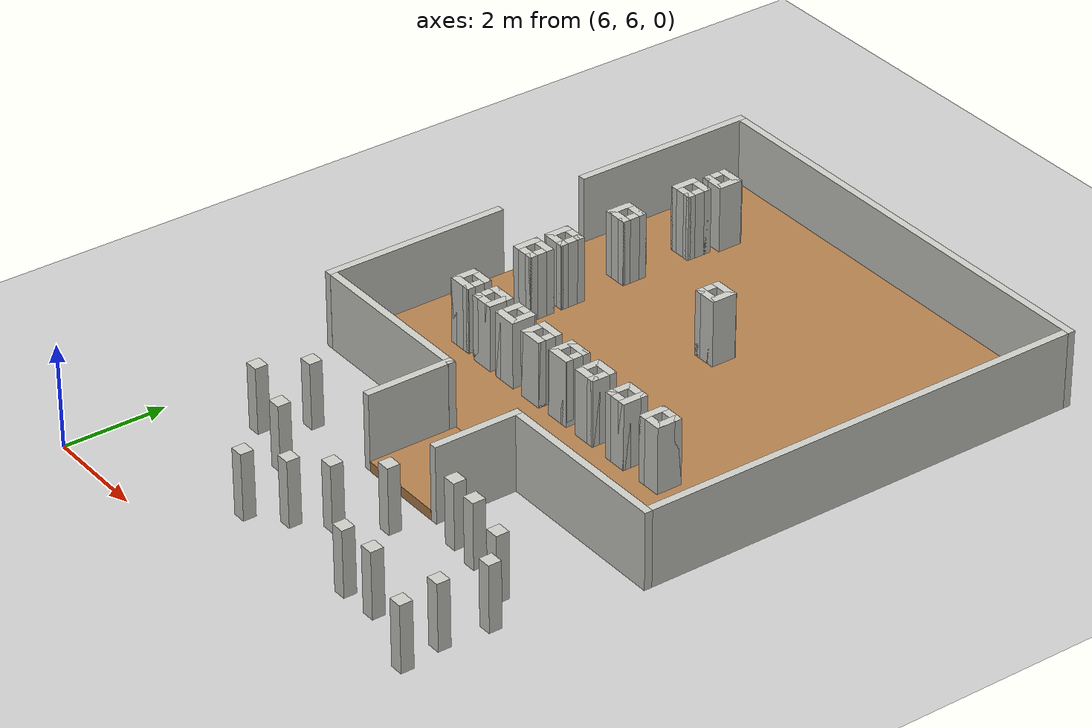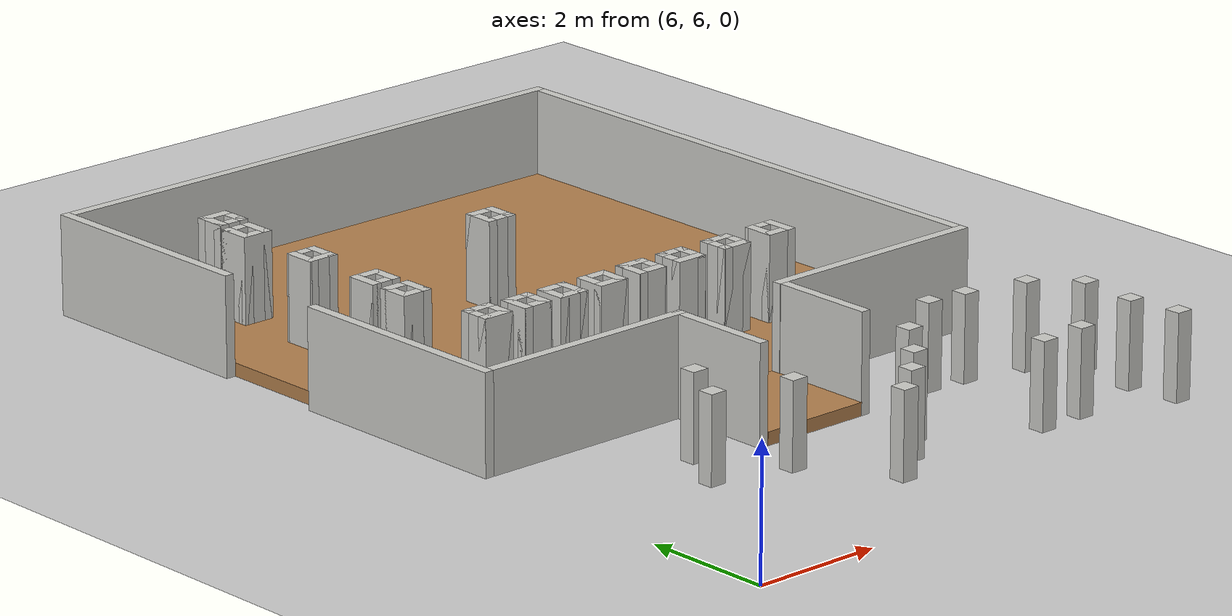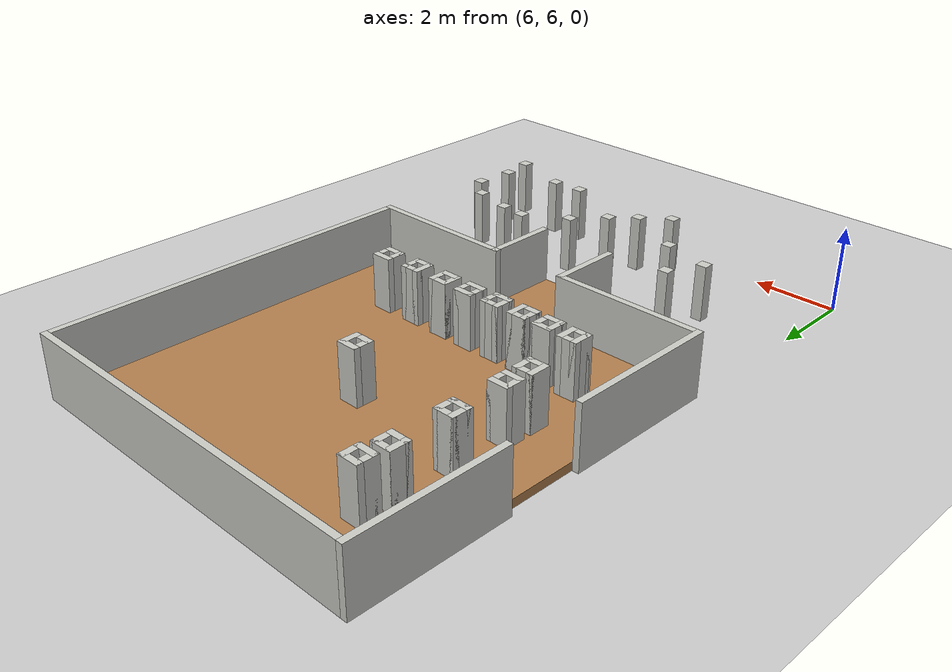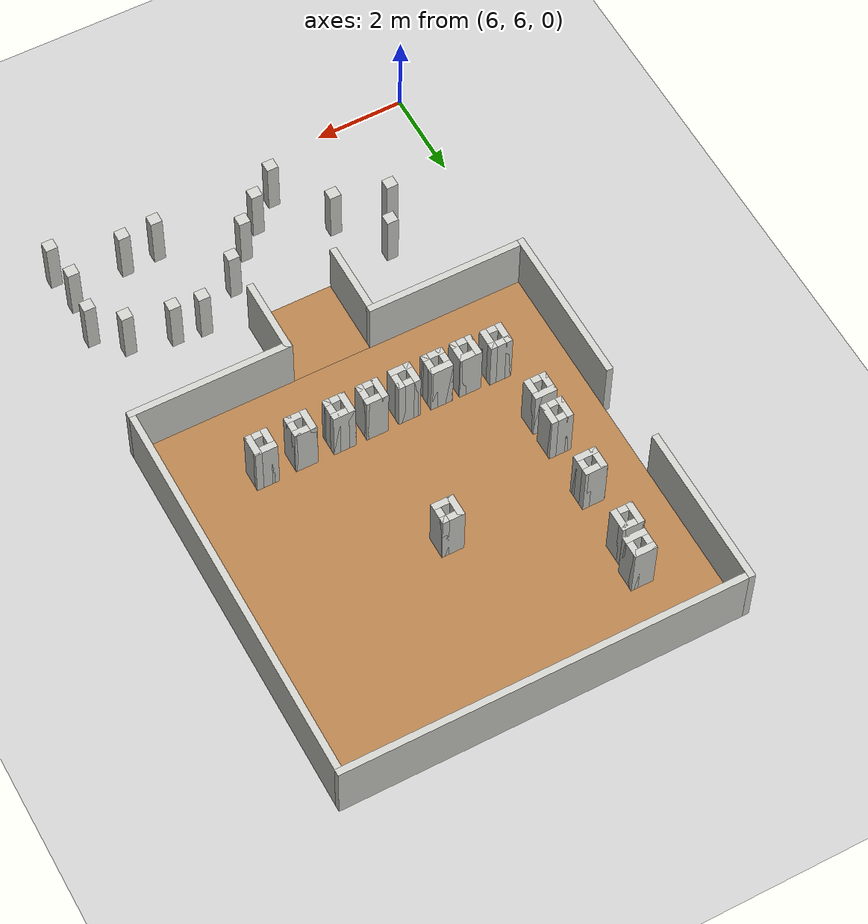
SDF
<sdf version="1.6">
 <world name="default">
  <model name="ground_plane">
   <static>1</static>
   <link name="link">
    <collision name="collision">
     <geometry><plane><normal>0 0 1</normal><size>100 100</size></plane></geometry>
     <surface><friction><ode><mu>100</mu><mu2>50</mu2></ode></friction></surface>
    </collision>
    <visual name="visual">
     <cast_shadows>0</cast_shadows>
     <geometry><plane><normal>0 0 1</normal><size>100 100</size></plane></geometry>
     <material>
      <script><uri>file://media/materials/scripts/gazebo.material</uri><name>Gazebo/Grey</name></script>
     </material>
    </visual>
   </link>
  </model>
  <model name="nerve_room_5x5ARENA_right_clone_clone">
   <pose>10.5243 15.8402 0 0 -0 0</pose>
   <link name="Wall_11">
    <collision name="Wall_11_Collision">
     <geometry><box><size>8.75 0.15 1.5</size></box></geometry>
     <pose>0 0 0.75 0 -0 0</pose>
    </collision>
    <visual name="Wall_11_Visual">
     <pose>0 0 0.75 0 -0 0</pose>
     <geometry><box><size>8.75 0.15 1.5</size></box></geometry>
     <material>
      <script><uri>file://media/materials/scripts/gazebo.material</uri><name>Gazebo/CeilingTiled</name></script>
      <ambient>1 0.764706 0.305882 1</ambient>
     </material>
    </visual>
    <pose>4.44912 -0.000431 0 0 0 -1.5708</pose>
   </link>
   <link name="Wall_13">
    <collision name="Wall_13_Collision">
     <geometry><box><size>3.65 0.15 1.5</size></box></geometry>
     <pose>0 0 0.75 0 -0 0</pose>
    </collision>
    <visual name="Wall_13_Visual">
     <pose>0 0 0.75 0 -0 0</pose>
     <geometry><box><size>3.65 0.15 1.5</size></box></geometry>
     <material>
      <script><uri>file://media/materials/scripts/gazebo.material</uri><name>Gazebo/CeilingTiled</name></script>
      <ambient>1 0.764706 0.305882 1</ambient>
     </material>
    </visual>
    <pose>-4.44961 2.70076 0 0 0 -1.5708</pose>
   </link>
   <link name="Wall_15">
    <collision name="Wall_15_Collision">
     <geometry><box><size>3.65 0.15 1.5</size></box></geometry>
     <pose>0 0 0.75 0 -0 0</pose>
    </collision>
    <visual name="Wall_15_Visual">
     <pose>0 0 0.75 0 -0 0</pose>
     <geometry><box><size>3.65 0.15 1.5</size></box></geometry>
     <material>
      <script><uri>file://media/materials/scripts/gazebo.material</uri><name>Gazebo/CeilingTiled</name></script>
      <ambient>1 0.764706 0.305882 1</ambient>
     </material>
    </visual>
    <pose>2.69961 -4.45076 0 0 -0 0</pose>
   </link>
   <link name="Wall_17">
    <collision name="Wall_17_Collision">
     <geometry><box><size>8.90028 0.15 1.5</size></box></geometry>
     <pose>0 0 0.75 0 -0 0</pose>
    </collision>
    <visual name="Wall_17_Visual">
     <pose>0 0 0.75 0 -0 0</pose>
     <geometry><box><size>8.90028 0.15 1.5</size></box></geometry>
     <material>
      <script><uri>file://media/materials/scripts/gazebo.material</uri><name>Gazebo/CeilingTiled</name></script>
      <ambient>1 0.764706 0.305882 1</ambient>
     </material>
    </visual>
    <pose>0.074346 4.45022 0 0 0 -6.5e-05</pose>
   </link>
   <link name="Wall_21">
    <collision name="Wall_21_Collision">
     <geometry><box><size>3.5 0.15 1.5</size></box></geometry>
     <pose>0 0 0.75 0 -0 0</pose>
    </collision>
    <visual name="Wall_21_Visual">
     <pose>0 0 0.75 0 -0 0</pose>
     <geometry><box><size>3.5 0.15 1.5</size></box></geometry>
     <material>
      <script><uri>file://media/materials/scripts/gazebo.material</uri><name>Gazebo/CeilingTiled</name></script>
      <ambient>1 0.764706 0.305882 1</ambient>
     </material>
    </visual>
    <pose>-2.62383 -4.4498 0 0 -0 0</pose>
   </link>
   <link name="Wall_25">
    <collision name="Wall_25_Collision">
     <geometry><box><size>3.65 0.15 1.5</size></box></geometry>
     <pose>0 0 0.75 0 -0 0</pose>
    </collision>
    <visual name="Wall_25_Visual">
     <pose>0 0 0.75 0 -0 0</pose>
     <geometry><box><size>3.65 0.15 1.5</size></box></geometry>
     <material>
      <script><uri>file://media/materials/scripts/gazebo.material</uri><name>Gazebo/CeilingTiled</name></script>
      <ambient>1 0.764706 0.305882 1</ambient>
     </material>
    </visual>
    <pose>-4.44941 -2.70044 0 0 0 -1.5708</pose>
   </link>
   <link name="Wall_6">
    <collision name="Wall_6_Collision">
     <geometry><box><size>8.76 8.75 0.2</size></box></geometry>
     <pose>0 0 0.1 0 -0 0</pose>
    </collision>
    <visual name="Wall_6_Visual">
     <pose>0 0 0.1 0 -0 0</pose>
     <geometry><box><size>8.76 8.75 0.2</size></box></geometry>
     <material>
      <script><uri>file://media/materials/scripts/gazebo.material</uri><name>Gazebo/Wood</name></script>
      <ambient>1 0.764706 0.305882 1</ambient>
     </material>
    </visual>
    <pose>0.000485 -0.004173 0 0 -0 1.5708</pose>
   </link>
   <static>1</static>
  </model>
  <model name="nerve_straight_clone_clone_1">
   <pose>10.5284 10.5852 0 0 -0 0</pose>
   <link name="Wall_0">
    <collision name="Wall_0_Collision">
     <geometry><box><size>1.76 1.75 0.2</size></box></geometry>
     <pose>0 0 0.1 0 -0 0</pose>
    </collision>
    <visual name="Wall_0_Visual">
     <pose>0 0 0.1 0 -0 0</pose>
     <geometry><box><size>1.76 1.75 0.2</size></box></geometry>
     <material>
      <script><uri>file://media/materials/scripts/gazebo.material</uri><name>Gazebo/Wood</name></script>
      <ambient>1 0.764706 0.305882 1</ambient>
     </material>
    </visual>
    <pose>0.005 -0.002 0 0 -0 3.14159</pose>
   </link>
   <link name="Wall_2">
    <collision name="Wall_2_Collision">
     <geometry><box><size>1.75 0.15 1.5</size></box></geometry>
     <pose>0 0 0.75 0 -0 0</pose>
    </collision>
    <visual name="Wall_2_Visual">
     <pose>0 0 0.75 0 -0 0</pose>
     <geometry><box><size>1.75 0.15 1.5</size></box></geometry>
     <material>
      <script><uri>file://media/materials/scripts/gazebo.material</uri><name>Gazebo/CeilingTiled</name></script>
      <ambient>1 0.764706 0.305882 1</ambient>
     </material>
    </visual>
    <pose>-0.955 0.002 0 0 0 -1.5708</pose>
   </link>
   <link name="Wall_4">
    <collision name="Wall_4_Collision">
     <geometry><box><size>1.75 0.15 1.5</size></box></geometry>
     <pose>0 0 0.75 0 -0 0</pose>
    </collision>
    <visual name="Wall_4_Visual">
     <pose>0 0 0.75 0 -0 0</pose>
     <geometry><box><size>1.75 0.15 1.5</size></box></geometry>
     <material>
      <script><uri>file://media/materials/scripts/gazebo.material</uri><name>Gazebo/CeilingTiled</name></script>
      <ambient>1 0.764706 0.305882 1</ambient>
     </material>
    </visual>
    <pose>0.955 0.002 0 0 0 -1.5708</pose>
   </link>
   <static>1</static>
  </model>
  <model name="nerve_obs_squarepillar_small">
   <pose>7.74911 8.7808 0.2 0 -0 0</pose>
   <link name="Wall_40">
    <collision name="Wall_40_Collision">
     <geometry><box><size>0.26 0.25 1.3</size></box></geometry>
     <pose>0 0 0.65 0 -0 0</pose>
    </collision>
    <visual name="Wall_40_Visual">
     <pose>0 0 0.65 0 -0 0</pose>
     <geometry><box><size>0.26 0.25 1.3</size></box></geometry>
     <material>
      <script><uri>file://media/materials/scripts/gazebo.material</uri><name>Gazebo/CeilingTiled</name></script>
      <ambient>1 0.764706 0.305882 1</ambient>
     </material>
    </visual>
   </link>
   <static>1</static>
  </model>
  <model name="nerve_obs_squarepillar_small_clone">
   <pose>11.4732 8.87117 0.2 0 -0 0</pose>
   <link name="Wall_40">
    <collision name="Wall_40_Collision">
     <geometry><box><size>0.26 0.25 1.3</size></box></geometry>
     <pose>0 0 0.65 0 -0 0</pose>
    </collision>
    <visual name="Wall_40_Visual">
     <pose>0 0 0.65 0 -0 0</pose>
     <geometry><box><size>0.26 0.25 1.3</size></box></geometry>
     <material>
      <script><uri>file://media/materials/scripts/gazebo.material</uri><name>Gazebo/CeilingTiled</name></script>
      <ambient>1 0.764706 0.305882 1</ambient>
     </material>
    </visual>
   </link>
   <static>1</static>
  </model>
  <model name="nerve_obs_squarepillar_small_clone_0">
   <pose>10.8766 8.17408 0.2 0 -0 0</pose>
   <link name="Wall_40">
    <collision name="Wall_40_Collision">
     <geometry><box><size>0.26 0.25 1.3</size></box></geometry>
     <pose>0 0 0.65 0 -0 0</pose>
    </collision>
    <visual name="Wall_40_Visual">
     <pose>0 0 0.65 0 -0 0</pose>
     <geometry><box><size>0.26 0.25 1.3</size></box></geometry>
     <material>
      <script><uri>file://media/materials/scripts/gazebo.material</uri><name>Gazebo/CeilingTiled</name></script>
      <ambient>1 0.764706 0.305882 1</ambient>
     </material>
    </visual>
   </link>
   <static>1</static>
  </model>
  <model name="nerve_obs_squarepillar_small_clone_1">
   <pose>9.73757 7.19935 0.2 0 -0 0</pose>
   <link name="Wall_40">
    <collision name="Wall_40_Collision">
     <geometry><box><size>0.26 0.25 1.3</size></box></geometry>
     <pose>0 0 0.65 0 -0 0</pose>
    </collision>
    <visual name="Wall_40_Visual">
     <pose>0 0 0.65 0 -0 0</pose>
     <geometry><box><size>0.26 0.25 1.3</size></box></geometry>
     <material>
      <script><uri>file://media/materials/scripts/gazebo.material</uri><name>Gazebo/CeilingTiled</name></script>
      <ambient>1 0.764706 0.305882 1</ambient>
     </material>
    </visual>
   </link>
   <static>1</static>
  </model>
  <model name="nerve_obs_squarepillar_small_clone_8">
   <pose>13.2321 7.34378 0.2 0 -0 0</pose>
   <link name="Wall_40">
    <collision name="Wall_40_Collision">
     <geometry><box><size>0.26 0.25 1.3</size></box></geometry>
     <pose>0 0 0.65 0 -0 0</pose>
    </collision>
    <visual name="Wall_40_Visual">
     <pose>0 0 0.65 0 -0 0</pose>
     <geometry><box><size>0.26 0.25 1.3</size></box></geometry>
     <material>
      <script><uri>file://media/materials/scripts/gazebo.material</uri><name>Gazebo/CeilingTiled</name></script>
      <ambient>1 0.764706 0.305882 1</ambient>
     </material>
    </visual>
   </link>
   <static>1</static>
  </model>
  <model name="nerve_obs_squarepillar_small_clone_22">
   <pose>14.0423 9.17522 0.2 0 -0 0</pose>
   <link name="Wall_40">
    <collision name="Wall_40_Collision">
     <geometry><box><size>0.26 0.25 1.3</size></box></geometry>
     <pose>0 0 0.65 0 -0 0</pose>
    </collision>
    <visual name="Wall_40_Visual">
     <pose>0 0 0.65 0 -0 0</pose>
     <geometry><box><size>0.26 0.25 1.3</size></box></geometry>
     <material>
      <script><uri>file://media/materials/scripts/gazebo.material</uri><name>Gazebo/CeilingTiled</name></script>
      <ambient>1 0.764706 0.305882 1</ambient>
     </material>
    </visual>
   </link>
   <static>1</static>
  </model>
  <model name="nerve_obs_squarepillar_small_clone_23">
   <pose>13.0819 9.4058 0.2 0 -0 0</pose>
   <link name="Wall_40">
    <collision name="Wall_40_Collision">
     <geometry><box><size>0.26 0.25 1.3</size></box></geometry>
     <pose>0 0 0.65 0 -0 0</pose>
    </collision>
    <visual name="Wall_40_Visual">
     <pose>0 0 0.65 0 -0 0</pose>
     <geometry><box><size>0.26 0.25 1.3</size></box></geometry>
     <material>
      <script><uri>file://media/materials/scripts/gazebo.material</uri><name>Gazebo/CeilingTiled</name></script>
      <ambient>1 0.764706 0.305882 1</ambient>
     </material>
    </visual>
   </link>
   <static>1</static>
  </model>
  <model name="nerve_obs_squarepillar_small_clone_24">
   <pose>12.4529 9.47783 0.2 0 -0 0</pose>
   <link name="Wall_40">
    <collision name="Wall_40_Collision">
     <geometry><box><size>0.26 0.25 1.3</size></box></geometry>
     <pose>0 0 0.65 0 -0 0</pose>
    </collision>
    <visual name="Wall_40_Visual">
     <pose>0 0 0.65 0 -0 0</pose>
     <geometry><box><size>0.26 0.25 1.3</size></box></geometry>
     <material>
      <script><uri>file://media/materials/scripts/gazebo.material</uri><name>Gazebo/CeilingTiled</name></script>
      <ambient>1 0.764706 0.305882 1</ambient>
     </material>
    </visual>
   </link>
   <static>1</static>
  </model>
  <model name="nerve_obs_squarepillar_small_clone_25">
   <pose>14.617 8.614 0.2 0 -0 0</pose>
   <link name="Wall_40">
    <collision name="Wall_40_Collision">
     <geometry><box><size>0.26 0.25 1.3</size></box></geometry>
     <pose>0 0 0.65 0 -0 0</pose>
    </collision>
    <visual name="Wall_40_Visual">
     <pose>0 0 0.65 0 -0 0</pose>
     <geometry><box><size>0.26 0.25 1.3</size></box></geometry>
     <material>
      <script><uri>file://media/materials/scripts/gazebo.material</uri><name>Gazebo/CeilingTiled</name></script>
      <ambient>1 0.764706 0.305882 1</ambient>
     </material>
    </visual>
   </link>
   <static>1</static>
  </model>
  <model name="nerve_obs_squarepillar_small_clone_26">
   <pose>14.5434 7.68778 0.2 0 -0 0</pose>
   <link name="Wall_40">
    <collision name="Wall_40_Collision">
     <geometry><box><size>0.26 0.25 1.3</size></box></geometry>
     <pose>0 0 0.65 0 -0 0</pose>
    </collision>
    <visual name="Wall_40_Visual">
     <pose>0 0 0.65 0 -0 0</pose>
     <geometry><box><size>0.26 0.25 1.3</size></box></geometry>
     <material>
      <script><uri>file://media/materials/scripts/gazebo.material</uri><name>Gazebo/CeilingTiled</name></script>
      <ambient>1 0.764706 0.305882 1</ambient>
     </material>
    </visual>
   </link>
   <static>1</static>
  </model>
  <model name="nerve_obs_squarepillar_small_clone_27">
   <pose>14.6632 6.90108 0.2 0 -0 0</pose>
   <link name="Wall_40">
    <collision name="Wall_40_Collision">
     <geometry><box><size>0.26 0.25 1.3</size></box></geometry>
     <pose>0 0 0.65 0 -0 0</pose>
    </collision>
    <visual name="Wall_40_Visual">
     <pose>0 0 0.65 0 -0 0</pose>
     <geometry><box><size>0.26 0.25 1.3</size></box></geometry>
     <material>
      <script><uri>file://media/materials/scripts/gazebo.material</uri><name>Gazebo/CeilingTiled</name></script>
      <ambient>1 0.764706 0.305882 1</ambient>
     </material>
    </visual>
   </link>
   <static>1</static>
  </model>
  <model name="nerve_obs_squarepillar_small_clone_41">
   <pose>8.17192 9.57959 0.2 0 -0 0</pose>
   <link name="Wall_40">
    <collision name="Wall_40_Collision">
     <geometry><box><size>0.26 0.25 1.3</size></box></geometry>
     <pose>0 0 0.65 0 -0 0</pose>
    </collision>
    <visual name="Wall_40_Visual">
     <pose>0 0 0.65 0 -0 0</pose>
     <geometry><box><size>0.26 0.25 1.3</size></box></geometry>
     <material>
      <script><uri>file://media/materials/scripts/gazebo.material</uri><name>Gazebo/CeilingTiled</name></script>
      <ambient>1 0.764706 0.305882 1</ambient>
     </material>
    </visual>
   </link>
   <static>1</static>
  </model>
  <model name="nerve_obs_squarepillar_small_clone_55">
   <pose>8.91919 8.45815 0.2 0 -0 0</pose>
   <link name="Wall_40">
    <collision name="Wall_40_Collision">
     <geometry><box><size>0.26 0.25 1.3</size></box></geometry>
     <pose>0 0 0.65 0 -0 0</pose>
    </collision>
    <visual name="Wall_40_Visual">
     <pose>0 0 0.65 0 -0 0</pose>
     <geometry><box><size>0.26 0.25 1.3</size></box></geometry>
     <material>
      <script><uri>file://media/materials/scripts/gazebo.material</uri><name>Gazebo/CeilingTiled</name></script>
      <ambient>1 0.764706 0.305882 1</ambient>
     </material>
    </visual>
   </link>
   <static>1</static>
  </model>
  <model name="nerve_obs_squarepillar_small_clone_56">
   <pose>10.3495 7.68433 0.2 0 -0 0</pose>
   <link name="Wall_40">
    <collision name="Wall_40_Collision">
     <geometry><box><size>0.26 0.25 1.3</size></box></geometry>
     <pose>0 0 0.65 0 -0 0</pose>
    </collision>
    <visual name="Wall_40_Visual">
     <pose>0 0 0.65 0 -0 0</pose>
     <geometry><box><size>0.26 0.25 1.3</size></box></geometry>
     <material>
      <script><uri>file://media/materials/scripts/gazebo.material</uri><name>Gazebo/CeilingTiled</name></script>
      <ambient>1 0.764706 0.305882 1</ambient>
     </material>
    </visual>
   </link>
   <static>1</static>
  </model>
  <model name="nerve_obs_squarepillar_small_clone_57">
   <pose>12.4798 7.30993 0.2 0 -0 0</pose>
   <link name="Wall_40">
    <collision name="Wall_40_Collision">
     <geometry><box><size>0.26 0.25 1.3</size></box></geometry>
     <pose>0 0 0.65 0 -0 0</pose>
    </collision>
    <visual name="Wall_40_Visual">
     <pose>0 0 0.65 0 -0 0</pose>
     <geometry><box><size>0.26 0.25 1.3</size></box></geometry>
     <material>
      <script><uri>file://media/materials/scripts/gazebo.material</uri><name>Gazebo/CeilingTiled</name></script>
      <ambient>1 0.764706 0.305882 1</ambient>
     </material>
    </visual>
   </link>
   <static>1</static>
  </model>
  <model name="nerve_obs_squarepillar_large_clone_9_clone_0">
   <pose>10.514 13.1706 0.2 0 -0 0</pose>
   <link name="Wall_31">
    <collision name="Wall_31_Collision">
     <geometry><box><size>0.5 0.15 1.3</size></box></geometry>
     <pose>0 0 0.65 0 -0 0</pose>
    </collision>
    <visual name="Wall_31_Visual">
     <pose>0 0 0.65 0 -0 0</pose>
     <geometry><box><size>0.5 0.15 1.3</size></box></geometry>
     <material>
      <script><uri>file://media/materials/scripts/gazebo.material</uri><name>Gazebo/CeilingTiled</name></script>
      <ambient>1 0.764706 0.305882 1</ambient>
     </material>
    </visual>
    <pose>-0.175 0 0 0 0 -1.5708</pose>
   </link>
   <link name="Wall_32">
    <collision name="Wall_32_Collision">
     <geometry><box><size>0.5 0.15 1.3</size></box></geometry>
     <pose>0 0 0.65 0 -0 0</pose>
    </collision>
    <visual name="Wall_32_Visual">
     <pose>0 0 0.65 0 -0 0</pose>
     <geometry><box><size>0.5 0.15 1.3</size></box></geometry>
     <material>
      <script><uri>file://media/materials/scripts/gazebo.material</uri><name>Gazebo/CeilingTiled</name></script>
      <ambient>1 0.764706 0.305882 1</ambient>
     </material>
    </visual>
    <pose>0 -0.175 0 0 -0 0</pose>
   </link>
   <link name="Wall_33">
    <collision name="Wall_33_Collision">
     <geometry><box><size>0.5 0.15 1.3</size></box></geometry>
     <pose>0 0 0.65 0 -0 0</pose>
    </collision>
    <visual name="Wall_33_Visual">
     <pose>0 0 0.65 0 -0 0</pose>
     <geometry><box><size>0.5 0.15 1.3</size></box></geometry>
     <material>
      <script><uri>file://media/materials/scripts/gazebo.material</uri><name>Gazebo/CeilingTiled</name></script>
      <ambient>1 0.764706 0.305882 1</ambient>
     </material>
    </visual>
    <pose>0.175 0 0 0 -0 1.5708</pose>
   </link>
   <link name="Wall_34">
    <collision name="Wall_34_Collision">
     <geometry><box><size>0.5 0.15 1.3</size></box></geometry>
     <pose>0 0 0.65 0 -0 0</pose>
    </collision>
    <visual name="Wall_34_Visual">
     <pose>0 0 0.65 0 -0 0</pose>
     <geometry><box><size>0.5 0.15 1.3</size></box></geometry>
     <material>
      <script><uri>file://media/materials/scripts/gazebo.material</uri><name>Gazebo/CeilingTiled</name></script>
      <ambient>1 0.764706 0.305882 1</ambient>
     </material>
    </visual>
    <pose>0 0.175 0 0 -0 3.14159</pose>
   </link>
   <static>1</static>
  </model>
  <model name="nerve_obs_squarepillar_large_clone_9_clone_1">
   <pose>9.77118 13.1447 0.2 0 -0 0</pose>
   <link name="Wall_31">
    <collision name="Wall_31_Collision">
     <geometry><box><size>0.5 0.15 1.3</size></box></geometry>
     <pose>0 0 0.65 0 -0 0</pose>
    </collision>
    <visual name="Wall_31_Visual">
     <pose>0 0 0.65 0 -0 0</pose>
     <geometry><box><size>0.5 0.15 1.3</size></box></geometry>
     <material>
      <script><uri>file://media/materials/scripts/gazebo.material</uri><name>Gazebo/CeilingTiled</name></script>
      <ambient>1 0.764706 0.305882 1</ambient>
     </material>
    </visual>
    <pose>-0.175 0 0 0 0 -1.5708</pose>
   </link>
   <link name="Wall_32">
    <collision name="Wall_32_Collision">
     <geometry><box><size>0.5 0.15 1.3</size></box></geometry>
     <pose>0 0 0.65 0 -0 0</pose>
    </collision>
    <visual name="Wall_32_Visual">
     <pose>0 0 0.65 0 -0 0</pose>
     <geometry><box><size>0.5 0.15 1.3</size></box></geometry>
     <material>
      <script><uri>file://media/materials/scripts/gazebo.material</uri><name>Gazebo/CeilingTiled</name></script>
      <ambient>1 0.764706 0.305882 1</ambient>
     </material>
    </visual>
    <pose>0 -0.175 0 0 -0 0</pose>
   </link>
   <link name="Wall_33">
    <collision name="Wall_33_Collision">
     <geometry><box><size>0.5 0.15 1.3</size></box></geometry>
     <pose>0 0 0.65 0 -0 0</pose>
    </collision>
    <visual name="Wall_33_Visual">
     <pose>0 0 0.65 0 -0 0</pose>
     <geometry><box><size>0.5 0.15 1.3</size></box></geometry>
     <material>
      <script><uri>file://media/materials/scripts/gazebo.material</uri><name>Gazebo/CeilingTiled</name></script>
      <ambient>1 0.764706 0.305882 1</ambient>
     </material>
    </visual>
    <pose>0.175 0 0 0 -0 1.5708</pose>
   </link>
   <link name="Wall_34">
    <collision name="Wall_34_Collision">
     <geometry><box><size>0.5 0.15 1.3</size></box></geometry>
     <pose>0 0 0.65 0 -0 0</pose>
    </collision>
    <visual name="Wall_34_Visual">
     <pose>0 0 0.65 0 -0 0</pose>
     <geometry><box><size>0.5 0.15 1.3</size></box></geometry>
     <material>
      <script><uri>file://media/materials/scripts/gazebo.material</uri><name>Gazebo/CeilingTiled</name></script>
      <ambient>1 0.764706 0.305882 1</ambient>
     </material>
    </visual>
    <pose>0 0.175 0 0 -0 3.14159</pose>
   </link>
   <static>1</static>
  </model>
  <model name="nerve_obs_squarepillar_large_clone_9_clone_2">
   <pose>9.02848 13.1473 0.2 0 -0 0</pose>
   <link name="Wall_31">
    <collision name="Wall_31_Collision">
     <geometry><box><size>0.5 0.15 1.3</size></box></geometry>
     <pose>0 0 0.65 0 -0 0</pose>
    </collision>
    <visual name="Wall_31_Visual">
     <pose>0 0 0.65 0 -0 0</pose>
     <geometry><box><size>0.5 0.15 1.3</size></box></geometry>
     <material>
      <script><uri>file://media/materials/scripts/gazebo.material</uri><name>Gazebo/CeilingTiled</name></script>
      <ambient>1 0.764706 0.305882 1</ambient>
     </material>
    </visual>
    <pose>-0.175 0 0 0 0 -1.5708</pose>
   </link>
   <link name="Wall_32">
    <collision name="Wall_32_Collision">
     <geometry><box><size>0.5 0.15 1.3</size></box></geometry>
     <pose>0 0 0.65 0 -0 0</pose>
    </collision>
    <visual name="Wall_32_Visual">
     <pose>0 0 0.65 0 -0 0</pose>
     <geometry><box><size>0.5 0.15 1.3</size></box></geometry>
     <material>
      <script><uri>file://media/materials/scripts/gazebo.material</uri><name>Gazebo/CeilingTiled</name></script>
      <ambient>1 0.764706 0.305882 1</ambient>
     </material>
    </visual>
    <pose>0 -0.175 0 0 -0 0</pose>
   </link>
   <link name="Wall_33">
    <collision name="Wall_33_Collision">
     <geometry><box><size>0.5 0.15 1.3</size></box></geometry>
     <pose>0 0 0.65 0 -0 0</pose>
    </collision>
    <visual name="Wall_33_Visual">
     <pose>0 0 0.65 0 -0 0</pose>
     <geometry><box><size>0.5 0.15 1.3</size></box></geometry>
     <material>
      <script><uri>file://media/materials/scripts/gazebo.material</uri><name>Gazebo/CeilingTiled</name></script>
      <ambient>1 0.764706 0.305882 1</ambient>
     </material>
    </visual>
    <pose>0.175 0 0 0 -0 1.5708</pose>
   </link>
   <link name="Wall_34">
    <collision name="Wall_34_Collision">
     <geometry><box><size>0.5 0.15 1.3</size></box></geometry>
     <pose>0 0 0.65 0 -0 0</pose>
    </collision>
    <visual name="Wall_34_Visual">
     <pose>0 0 0.65 0 -0 0</pose>
     <geometry><box><size>0.5 0.15 1.3</size></box></geometry>
     <material>
      <script><uri>file://media/materials/scripts/gazebo.material</uri><name>Gazebo/CeilingTiled</name></script>
      <ambient>1 0.764706 0.305882 1</ambient>
     </material>
    </visual>
    <pose>0 0.175 0 0 -0 3.14159</pose>
   </link>
   <static>1</static>
  </model>
  <model name="nerve_obs_squarepillar_large_clone_9_clone_3">
   <pose>8.37143 13.1496 0.2 0 -0 0</pose>
   <link name="Wall_31">
    <collision name="Wall_31_Collision">
     <geometry><box><size>0.5 0.15 1.3</size></box></geometry>
     <pose>0 0 0.65 0 -0 0</pose>
    </collision>
    <visual name="Wall_31_Visual">
     <pose>0 0 0.65 0 -0 0</pose>
     <geometry><box><size>0.5 0.15 1.3</size></box></geometry>
     <material>
      <script><uri>file://media/materials/scripts/gazebo.material</uri><name>Gazebo/CeilingTiled</name></script>
      <ambient>1 0.764706 0.305882 1</ambient>
     </material>
    </visual>
    <pose>-0.175 0 0 0 0 -1.5708</pose>
   </link>
   <link name="Wall_32">
    <collision name="Wall_32_Collision">
     <geometry><box><size>0.5 0.15 1.3</size></box></geometry>
     <pose>0 0 0.65 0 -0 0</pose>
    </collision>
    <visual name="Wall_32_Visual">
     <pose>0 0 0.65 0 -0 0</pose>
     <geometry><box><size>0.5 0.15 1.3</size></box></geometry>
     <material>
      <script><uri>file://media/materials/scripts/gazebo.material</uri><name>Gazebo/CeilingTiled</name></script>
      <ambient>1 0.764706 0.305882 1</ambient>
     </material>
    </visual>
    <pose>0 -0.175 0 0 -0 0</pose>
   </link>
   <link name="Wall_33">
    <collision name="Wall_33_Collision">
     <geometry><box><size>0.5 0.15 1.3</size></box></geometry>
     <pose>0 0 0.65 0 -0 0</pose>
    </collision>
    <visual name="Wall_33_Visual">
     <pose>0 0 0.65 0 -0 0</pose>
     <geometry><box><size>0.5 0.15 1.3</size></box></geometry>
     <material>
      <script><uri>file://media/materials/scripts/gazebo.material</uri><name>Gazebo/CeilingTiled</name></script>
      <ambient>1 0.764706 0.305882 1</ambient>
     </material>
    </visual>
    <pose>0.175 0 0 0 -0 1.5708</pose>
   </link>
   <link name="Wall_34">
    <collision name="Wall_34_Collision">
     <geometry><box><size>0.5 0.15 1.3</size></box></geometry>
     <pose>0 0 0.65 0 -0 0</pose>
    </collision>
    <visual name="Wall_34_Visual">
     <pose>0 0 0.65 0 -0 0</pose>
     <geometry><box><size>0.5 0.15 1.3</size></box></geometry>
     <material>
      <script><uri>file://media/materials/scripts/gazebo.material</uri><name>Gazebo/CeilingTiled</name></script>
      <ambient>1 0.764706 0.305882 1</ambient>
     </material>
    </visual>
    <pose>0 0.175 0 0 -0 3.14159</pose>
   </link>
   <static>1</static>
  </model>
  <model name="nerve_obs_squarepillar_large_clone_9_clone_4">
   <pose>7.68592 13.1804 0.2 0 -0 0</pose>
   <link name="Wall_31">
    <collision name="Wall_31_Collision">
     <geometry><box><size>0.5 0.15 1.3</size></box></geometry>
     <pose>0 0 0.65 0 -0 0</pose>
    </collision>
    <visual name="Wall_31_Visual">
     <pose>0 0 0.65 0 -0 0</pose>
     <geometry><box><size>0.5 0.15 1.3</size></box></geometry>
     <material>
      <script><uri>file://media/materials/scripts/gazebo.material</uri><name>Gazebo/CeilingTiled</name></script>
      <ambient>1 0.764706 0.305882 1</ambient>
     </material>
    </visual>
    <pose>-0.175 0 0 0 0 -1.5708</pose>
   </link>
   <link name="Wall_32">
    <collision name="Wall_32_Collision">
     <geometry><box><size>0.5 0.15 1.3</size></box></geometry>
     <pose>0 0 0.65 0 -0 0</pose>
    </collision>
    <visual name="Wall_32_Visual">
     <pose>0 0 0.65 0 -0 0</pose>
     <geometry><box><size>0.5 0.15 1.3</size></box></geometry>
     <material>
      <script><uri>file://media/materials/scripts/gazebo.material</uri><name>Gazebo/CeilingTiled</name></script>
      <ambient>1 0.764706 0.305882 1</ambient>
     </material>
    </visual>
    <pose>0 -0.175 0 0 -0 0</pose>
   </link>
   <link name="Wall_33">
    <collision name="Wall_33_Collision">
     <geometry><box><size>0.5 0.15 1.3</size></box></geometry>
     <pose>0 0 0.65 0 -0 0</pose>
    </collision>
    <visual name="Wall_33_Visual">
     <pose>0 0 0.65 0 -0 0</pose>
     <geometry><box><size>0.5 0.15 1.3</size></box></geometry>
     <material>
      <script><uri>file://media/materials/scripts/gazebo.material</uri><name>Gazebo/CeilingTiled</name></script>
      <ambient>1 0.764706 0.305882 1</ambient>
     </material>
    </visual>
    <pose>0.175 0 0 0 -0 1.5708</pose>
   </link>
   <link name="Wall_34">
    <collision name="Wall_34_Collision">
     <geometry><box><size>0.5 0.15 1.3</size></box></geometry>
     <pose>0 0 0.65 0 -0 0</pose>
    </collision>
    <visual name="Wall_34_Visual">
     <pose>0 0 0.65 0 -0 0</pose>
     <geometry><box><size>0.5 0.15 1.3</size></box></geometry>
     <material>
      <script><uri>file://media/materials/scripts/gazebo.material</uri><name>Gazebo/CeilingTiled</name></script>
      <ambient>1 0.764706 0.305882 1</ambient>
     </material>
    </visual>
    <pose>0 0.175 0 0 -0 3.14159</pose>
   </link>
   <static>1</static>
  </model>
  <model name="nerve_obs_squarepillar_large_clone_9_clone_7">
   <pose>11.2567 13.1683 0.2 0 -0 0</pose>
   <link name="Wall_31">
    <collision name="Wall_31_Collision">
     <geometry><box><size>0.5 0.15 1.3</size></box></geometry>
     <pose>0 0 0.65 0 -0 0</pose>
    </collision>
    <visual name="Wall_31_Visual">
     <pose>0 0 0.65 0 -0 0</pose>
     <geometry><box><size>0.5 0.15 1.3</size></box></geometry>
     <material>
      <script><uri>file://media/materials/scripts/gazebo.material</uri><name>Gazebo/CeilingTiled</name></script>
      <ambient>1 0.764706 0.305882 1</ambient>
     </material>
    </visual>
    <pose>-0.175 0 0 0 0 -1.5708</pose>
   </link>
   <link name="Wall_32">
    <collision name="Wall_32_Collision">
     <geometry><box><size>0.5 0.15 1.3</size></box></geometry>
     <pose>0 0 0.65 0 -0 0</pose>
    </collision>
    <visual name="Wall_32_Visual">
     <pose>0 0 0.65 0 -0 0</pose>
     <geometry><box><size>0.5 0.15 1.3</size></box></geometry>
     <material>
      <script><uri>file://media/materials/scripts/gazebo.material</uri><name>Gazebo/CeilingTiled</name></script>
      <ambient>1 0.764706 0.305882 1</ambient>
     </material>
    </visual>
    <pose>0 -0.175 0 0 -0 0</pose>
   </link>
   <link name="Wall_33">
    <collision name="Wall_33_Collision">
     <geometry><box><size>0.5 0.15 1.3</size></box></geometry>
     <pose>0 0 0.65 0 -0 0</pose>
    </collision>
    <visual name="Wall_33_Visual">
     <pose>0 0 0.65 0 -0 0</pose>
     <geometry><box><size>0.5 0.15 1.3</size></box></geometry>
     <material>
      <script><uri>file://media/materials/scripts/gazebo.material</uri><name>Gazebo/CeilingTiled</name></script>
      <ambient>1 0.764706 0.305882 1</ambient>
     </material>
    </visual>
    <pose>0.175 0 0 0 -0 1.5708</pose>
   </link>
   <link name="Wall_34">
    <collision name="Wall_34_Collision">
     <geometry><box><size>0.5 0.15 1.3</size></box></geometry>
     <pose>0 0 0.65 0 -0 0</pose>
    </collision>
    <visual name="Wall_34_Visual">
     <pose>0 0 0.65 0 -0 0</pose>
     <geometry><box><size>0.5 0.15 1.3</size></box></geometry>
     <material>
      <script><uri>file://media/materials/scripts/gazebo.material</uri><name>Gazebo/CeilingTiled</name></script>
      <ambient>1 0.764706 0.305882 1</ambient>
     </material>
    </visual>
    <pose>0 0.175 0 0 -0 3.14159</pose>
   </link>
   <static>1</static>
  </model>
  <model name="nerve_obs_squarepillar_large_clone_9_clone_8">
   <pose>12.1138 13.1653 0.2 0 -0 0</pose>
   <link name="Wall_31">
    <collision name="Wall_31_Collision">
     <geometry><box><size>0.5 0.15 1.3</size></box></geometry>
     <pose>0 0 0.65 0 -0 0</pose>
    </collision>
    <visual name="Wall_31_Visual">
     <pose>0 0 0.65 0 -0 0</pose>
     <geometry><box><size>0.5 0.15 1.3</size></box></geometry>
     <material>
      <script><uri>file://media/materials/scripts/gazebo.material</uri><name>Gazebo/CeilingTiled</name></script>
      <ambient>1 0.764706 0.305882 1</ambient>
     </material>
    </visual>
    <pose>-0.175 0 0 0 0 -1.5708</pose>
   </link>
   <link name="Wall_32">
    <collision name="Wall_32_Collision">
     <geometry><box><size>0.5 0.15 1.3</size></box></geometry>
     <pose>0 0 0.65 0 -0 0</pose>
    </collision>
    <visual name="Wall_32_Visual">
     <pose>0 0 0.65 0 -0 0</pose>
     <geometry><box><size>0.5 0.15 1.3</size></box></geometry>
     <material>
      <script><uri>file://media/materials/scripts/gazebo.material</uri><name>Gazebo/CeilingTiled</name></script>
      <ambient>1 0.764706 0.305882 1</ambient>
     </material>
    </visual>
    <pose>0 -0.175 0 0 -0 0</pose>
   </link>
   <link name="Wall_33">
    <collision name="Wall_33_Collision">
     <geometry><box><size>0.5 0.15 1.3</size></box></geometry>
     <pose>0 0 0.65 0 -0 0</pose>
    </collision>
    <visual name="Wall_33_Visual">
     <pose>0 0 0.65 0 -0 0</pose>
     <geometry><box><size>0.5 0.15 1.3</size></box></geometry>
     <material>
      <script><uri>file://media/materials/scripts/gazebo.material</uri><name>Gazebo/CeilingTiled</name></script>
      <ambient>1 0.764706 0.305882 1</ambient>
     </material>
    </visual>
    <pose>0.175 0 0 0 -0 1.5708</pose>
   </link>
   <link name="Wall_34">
    <collision name="Wall_34_Collision">
     <geometry><box><size>0.5 0.15 1.3</size></box></geometry>
     <pose>0 0 0.65 0 -0 0</pose>
    </collision>
    <visual name="Wall_34_Visual">
     <pose>0 0 0.65 0 -0 0</pose>
     <geometry><box><size>0.5 0.15 1.3</size></box></geometry>
     <material>
      <script><uri>file://media/materials/scripts/gazebo.material</uri><name>Gazebo/CeilingTiled</name></script>
      <ambient>1 0.764706 0.305882 1</ambient>
     </material>
    </visual>
    <pose>0 0.175 0 0 -0 3.14159</pose>
   </link>
   <static>1</static>
  </model>
  <model name="nerve_obs_squarepillar_large_clone_9_clone_9">
   <pose>12.9994 13.1909 0.2 0 -0 0</pose>
   <link name="Wall_31">
    <collision name="Wall_31_Collision">
     <geometry><box><size>0.5 0.15 1.3</size></box></geometry>
     <pose>0 0 0.65 0 -0 0</pose>
    </collision>
    <visual name="Wall_31_Visual">
     <pose>0 0 0.65 0 -0 0</pose>
     <geometry><box><size>0.5 0.15 1.3</size></box></geometry>
     <material>
      <script><uri>file://media/materials/scripts/gazebo.material</uri><name>Gazebo/CeilingTiled</name></script>
      <ambient>1 0.764706 0.305882 1</ambient>
     </material>
    </visual>
    <pose>-0.175 0 0 0 0 -1.5708</pose>
   </link>
   <link name="Wall_32">
    <collision name="Wall_32_Collision">
     <geometry><box><size>0.5 0.15 1.3</size></box></geometry>
     <pose>0 0 0.65 0 -0 0</pose>
    </collision>
    <visual name="Wall_32_Visual">
     <pose>0 0 0.65 0 -0 0</pose>
     <geometry><box><size>0.5 0.15 1.3</size></box></geometry>
     <material>
      <script><uri>file://media/materials/scripts/gazebo.material</uri><name>Gazebo/CeilingTiled</name></script>
      <ambient>1 0.764706 0.305882 1</ambient>
     </material>
    </visual>
    <pose>0 -0.175 0 0 -0 0</pose>
   </link>
   <link name="Wall_33">
    <collision name="Wall_33_Collision">
     <geometry><box><size>0.5 0.15 1.3</size></box></geometry>
     <pose>0 0 0.65 0 -0 0</pose>
    </collision>
    <visual name="Wall_33_Visual">
     <pose>0 0 0.65 0 -0 0</pose>
     <geometry><box><size>0.5 0.15 1.3</size></box></geometry>
     <material>
      <script><uri>file://media/materials/scripts/gazebo.material</uri><name>Gazebo/CeilingTiled</name></script>
      <ambient>1 0.764706 0.305882 1</ambient>
     </material>
    </visual>
    <pose>0.175 0 0 0 -0 1.5708</pose>
   </link>
   <link name="Wall_34">
    <collision name="Wall_34_Collision">
     <geometry><box><size>0.5 0.15 1.3</size></box></geometry>
     <pose>0 0 0.65 0 -0 0</pose>
    </collision>
    <visual name="Wall_34_Visual">
     <pose>0 0 0.65 0 -0 0</pose>
     <geometry><box><size>0.5 0.15 1.3</size></box></geometry>
     <material>
      <script><uri>file://media/materials/scripts/gazebo.material</uri><name>Gazebo/CeilingTiled</name></script>
      <ambient>1 0.764706 0.305882 1</ambient>
     </material>
    </visual>
    <pose>0 0.175 0 0 -0 3.14159</pose>
   </link>
   <static>1</static>
  </model>
  <model name="nerve_obs_squarepillar_large_clone_9_clone_10">
   <pose>7.49346 15.2955 0.2 0 -0 0</pose>
   <link name="Wall_31">
    <collision name="Wall_31_Collision">
     <geometry><box><size>0.5 0.15 1.3</size></box></geometry>
     <pose>0 0 0.65 0 -0 0</pose>
    </collision>
    <visual name="Wall_31_Visual">
     <pose>0 0 0.65 0 -0 0</pose>
     <geometry><box><size>0.5 0.15 1.3</size></box></geometry>
     <material>
      <script><uri>file://media/materials/scripts/gazebo.material</uri><name>Gazebo/CeilingTiled</name></script>
      <ambient>1 0.764706 0.305882 1</ambient>
     </material>
    </visual>
    <pose>-0.175 0 0 0 0 -1.5708</pose>
   </link>
   <link name="Wall_32">
    <collision name="Wall_32_Collision">
     <geometry><box><size>0.5 0.15 1.3</size></box></geometry>
     <pose>0 0 0.65 0 -0 0</pose>
    </collision>
    <visual name="Wall_32_Visual">
     <pose>0 0 0.65 0 -0 0</pose>
     <geometry><box><size>0.5 0.15 1.3</size></box></geometry>
     <material>
      <script><uri>file://media/materials/scripts/gazebo.material</uri><name>Gazebo/CeilingTiled</name></script>
      <ambient>1 0.764706 0.305882 1</ambient>
     </material>
    </visual>
    <pose>0 -0.175 0 0 -0 0</pose>
   </link>
   <link name="Wall_33">
    <collision name="Wall_33_Collision">
     <geometry><box><size>0.5 0.15 1.3</size></box></geometry>
     <pose>0 0 0.65 0 -0 0</pose>
    </collision>
    <visual name="Wall_33_Visual">
     <pose>0 0 0.65 0 -0 0</pose>
     <geometry><box><size>0.5 0.15 1.3</size></box></geometry>
     <material>
      <script><uri>file://media/materials/scripts/gazebo.material</uri><name>Gazebo/CeilingTiled</name></script>
      <ambient>1 0.764706 0.305882 1</ambient>
     </material>
    </visual>
    <pose>0.175 0 0 0 -0 1.5708</pose>
   </link>
   <link name="Wall_34">
    <collision name="Wall_34_Collision">
     <geometry><box><size>0.5 0.15 1.3</size></box></geometry>
     <pose>0 0 0.65 0 -0 0</pose>
    </collision>
    <visual name="Wall_34_Visual">
     <pose>0 0 0.65 0 -0 0</pose>
     <geometry><box><size>0.5 0.15 1.3</size></box></geometry>
     <material>
      <script><uri>file://media/materials/scripts/gazebo.material</uri><name>Gazebo/CeilingTiled</name></script>
      <ambient>1 0.764706 0.305882 1</ambient>
     </material>
    </visual>
    <pose>0 0.175 0 0 -0 3.14159</pose>
   </link>
   <static>1</static>
  </model>
  <model name="nerve_obs_squarepillar_large_clone_9_clone_11">
   <pose>7.49125 14.6382 0.2 0 -0 0</pose>
   <link name="Wall_31">
    <collision name="Wall_31_Collision">
     <geometry><box><size>0.5 0.15 1.3</size></box></geometry>
     <pose>0 0 0.65 0 -0 0</pose>
    </collision>
    <visual name="Wall_31_Visual">
     <pose>0 0 0.65 0 -0 0</pose>
     <geometry><box><size>0.5 0.15 1.3</size></box></geometry>
     <material>
      <script><uri>file://media/materials/scripts/gazebo.material</uri><name>Gazebo/CeilingTiled</name></script>
      <ambient>1 0.764706 0.305882 1</ambient>
     </material>
    </visual>
    <pose>-0.175 0 0 0 0 -1.5708</pose>
   </link>
   <link name="Wall_32">
    <collision name="Wall_32_Collision">
     <geometry><box><size>0.5 0.15 1.3</size></box></geometry>
     <pose>0 0 0.65 0 -0 0</pose>
    </collision>
    <visual name="Wall_32_Visual">
     <pose>0 0 0.65 0 -0 0</pose>
     <geometry><box><size>0.5 0.15 1.3</size></box></geometry>
     <material>
      <script><uri>file://media/materials/scripts/gazebo.material</uri><name>Gazebo/CeilingTiled</name></script>
      <ambient>1 0.764706 0.305882 1</ambient>
     </material>
    </visual>
    <pose>0 -0.175 0 0 -0 0</pose>
   </link>
   <link name="Wall_33">
    <collision name="Wall_33_Collision">
     <geometry><box><size>0.5 0.15 1.3</size></box></geometry>
     <pose>0 0 0.65 0 -0 0</pose>
    </collision>
    <visual name="Wall_33_Visual">
     <pose>0 0 0.65 0 -0 0</pose>
     <geometry><box><size>0.5 0.15 1.3</size></box></geometry>
     <material>
      <script><uri>file://media/materials/scripts/gazebo.material</uri><name>Gazebo/CeilingTiled</name></script>
      <ambient>1 0.764706 0.305882 1</ambient>
     </material>
    </visual>
    <pose>0.175 0 0 0 -0 1.5708</pose>
   </link>
   <link name="Wall_34">
    <collision name="Wall_34_Collision">
     <geometry><box><size>0.5 0.15 1.3</size></box></geometry>
     <pose>0 0 0.65 0 -0 0</pose>
    </collision>
    <visual name="Wall_34_Visual">
     <pose>0 0 0.65 0 -0 0</pose>
     <geometry><box><size>0.5 0.15 1.3</size></box></geometry>
     <material>
      <script><uri>file://media/materials/scripts/gazebo.material</uri><name>Gazebo/CeilingTiled</name></script>
      <ambient>1 0.764706 0.305882 1</ambient>
     </material>
    </visual>
    <pose>0 0.175 0 0 -0 3.14159</pose>
   </link>
   <static>1</static>
  </model>
  <model name="nerve_obs_squarepillar_large_clone_9_clone_13">
   <pose>7.49826 16.6382 0.2 0 -0 0</pose>
   <link name="Wall_31">
    <collision name="Wall_31_Collision">
     <geometry><box><size>0.5 0.15 1.3</size></box></geometry>
     <pose>0 0 0.65 0 -0 0</pose>
    </collision>
    <visual name="Wall_31_Visual">
     <pose>0 0 0.65 0 -0 0</pose>
     <geometry><box><size>0.5 0.15 1.3</size></box></geometry>
     <material>
      <script><uri>file://media/materials/scripts/gazebo.material</uri><name>Gazebo/CeilingTiled</name></script>
      <ambient>1 0.764706 0.305882 1</ambient>
     </material>
    </visual>
    <pose>-0.175 0 0 0 0 -1.5708</pose>
   </link>
   <link name="Wall_32">
    <collision name="Wall_32_Collision">
     <geometry><box><size>0.5 0.15 1.3</size></box></geometry>
     <pose>0 0 0.65 0 -0 0</pose>
    </collision>
    <visual name="Wall_32_Visual">
     <pose>0 0 0.65 0 -0 0</pose>
     <geometry><box><size>0.5 0.15 1.3</size></box></geometry>
     <material>
      <script><uri>file://media/materials/scripts/gazebo.material</uri><name>Gazebo/CeilingTiled</name></script>
      <ambient>1 0.764706 0.305882 1</ambient>
     </material>
    </visual>
    <pose>0 -0.175 0 0 -0 0</pose>
   </link>
   <link name="Wall_33">
    <collision name="Wall_33_Collision">
     <geometry><box><size>0.5 0.15 1.3</size></box></geometry>
     <pose>0 0 0.65 0 -0 0</pose>
    </collision>
    <visual name="Wall_33_Visual">
     <pose>0 0 0.65 0 -0 0</pose>
     <geometry><box><size>0.5 0.15 1.3</size></box></geometry>
     <material>
      <script><uri>file://media/materials/scripts/gazebo.material</uri><name>Gazebo/CeilingTiled</name></script>
      <ambient>1 0.764706 0.305882 1</ambient>
     </material>
    </visual>
    <pose>0.175 0 0 0 -0 1.5708</pose>
   </link>
   <link name="Wall_34">
    <collision name="Wall_34_Collision">
     <geometry><box><size>0.5 0.15 1.3</size></box></geometry>
     <pose>0 0 0.65 0 -0 0</pose>
    </collision>
    <visual name="Wall_34_Visual">
     <pose>0 0 0.65 0 -0 0</pose>
     <geometry><box><size>0.5 0.15 1.3</size></box></geometry>
     <material>
      <script><uri>file://media/materials/scripts/gazebo.material</uri><name>Gazebo/CeilingTiled</name></script>
      <ambient>1 0.764706 0.305882 1</ambient>
     </material>
    </visual>
    <pose>0 0.175 0 0 -0 3.14159</pose>
   </link>
   <static>1</static>
  </model>
  <model name="nerve_obs_squarepillar_large_clone_9_clone_15">
   <pose>7.50374 18.0675 0.2 0 -0 0</pose>
   <link name="Wall_31">
    <collision name="Wall_31_Collision">
     <geometry><box><size>0.5 0.15 1.3</size></box></geometry>
     <pose>0 0 0.65 0 -0 0</pose>
    </collision>
    <visual name="Wall_31_Visual">
     <pose>0 0 0.65 0 -0 0</pose>
     <geometry><box><size>0.5 0.15 1.3</size></box></geometry>
     <material>
      <script><uri>file://media/materials/scripts/gazebo.material</uri><name>Gazebo/CeilingTiled</name></script>
      <ambient>1 0.764706 0.305882 1</ambient>
     </material>
    </visual>
    <pose>-0.175 0 0 0 0 -1.5708</pose>
   </link>
   <link name="Wall_32">
    <collision name="Wall_32_Collision">
     <geometry><box><size>0.5 0.15 1.3</size></box></geometry>
     <pose>0 0 0.65 0 -0 0</pose>
    </collision>
    <visual name="Wall_32_Visual">
     <pose>0 0 0.65 0 -0 0</pose>
     <geometry><box><size>0.5 0.15 1.3</size></box></geometry>
     <material>
      <script><uri>file://media/materials/scripts/gazebo.material</uri><name>Gazebo/CeilingTiled</name></script>
      <ambient>1 0.764706 0.305882 1</ambient>
     </material>
    </visual>
    <pose>0 -0.175 0 0 -0 0</pose>
   </link>
   <link name="Wall_33">
    <collision name="Wall_33_Collision">
     <geometry><box><size>0.5 0.15 1.3</size></box></geometry>
     <pose>0 0 0.65 0 -0 0</pose>
    </collision>
    <visual name="Wall_33_Visual">
     <pose>0 0 0.65 0 -0 0</pose>
     <geometry><box><size>0.5 0.15 1.3</size></box></geometry>
     <material>
      <script><uri>file://media/materials/scripts/gazebo.material</uri><name>Gazebo/CeilingTiled</name></script>
      <ambient>1 0.764706 0.305882 1</ambient>
     </material>
    </visual>
    <pose>0.175 0 0 0 -0 1.5708</pose>
   </link>
   <link name="Wall_34">
    <collision name="Wall_34_Collision">
     <geometry><box><size>0.5 0.15 1.3</size></box></geometry>
     <pose>0 0 0.65 0 -0 0</pose>
    </collision>
    <visual name="Wall_34_Visual">
     <pose>0 0 0.65 0 -0 0</pose>
     <geometry><box><size>0.5 0.15 1.3</size></box></geometry>
     <material>
      <script><uri>file://media/materials/scripts/gazebo.material</uri><name>Gazebo/CeilingTiled</name></script>
      <ambient>1 0.764706 0.305882 1</ambient>
     </material>
    </visual>
    <pose>0 0.175 0 0 -0 3.14159</pose>
   </link>
   <static>1</static>
  </model>
  <model name="nerve_obs_squarepillar_large_clone_9_clone_16">
   <pose>7.59143 18.6957 0.2 0 -0 0</pose>
   <link name="Wall_31">
    <collision name="Wall_31_Collision">
     <geometry><box><size>0.5 0.15 1.3</size></box></geometry>
     <pose>0 0 0.65 0 -0 0</pose>
    </collision>
    <visual name="Wall_31_Visual">
     <pose>0 0 0.65 0 -0 0</pose>
     <geometry><box><size>0.5 0.15 1.3</size></box></geometry>
     <material>
      <script><uri>file://media/materials/scripts/gazebo.material</uri><name>Gazebo/CeilingTiled</name></script>
      <ambient>1 0.764706 0.305882 1</ambient>
     </material>
    </visual>
    <pose>-0.175 0 0 0 0 -1.5708</pose>
   </link>
   <link name="Wall_32">
    <collision name="Wall_32_Collision">
     <geometry><box><size>0.5 0.15 1.3</size></box></geometry>
     <pose>0 0 0.65 0 -0 0</pose>
    </collision>
    <visual name="Wall_32_Visual">
     <pose>0 0 0.65 0 -0 0</pose>
     <geometry><box><size>0.5 0.15 1.3</size></box></geometry>
     <material>
      <script><uri>file://media/materials/scripts/gazebo.material</uri><name>Gazebo/CeilingTiled</name></script>
      <ambient>1 0.764706 0.305882 1</ambient>
     </material>
    </visual>
    <pose>0 -0.175 0 0 -0 0</pose>
   </link>
   <link name="Wall_33">
    <collision name="Wall_33_Collision">
     <geometry><box><size>0.5 0.15 1.3</size></box></geometry>
     <pose>0 0 0.65 0 -0 0</pose>
    </collision>
    <visual name="Wall_33_Visual">
     <pose>0 0 0.65 0 -0 0</pose>
     <geometry><box><size>0.5 0.15 1.3</size></box></geometry>
     <material>
      <script><uri>file://media/materials/scripts/gazebo.material</uri><name>Gazebo/CeilingTiled</name></script>
      <ambient>1 0.764706 0.305882 1</ambient>
     </material>
    </visual>
    <pose>0.175 0 0 0 -0 1.5708</pose>
   </link>
   <link name="Wall_34">
    <collision name="Wall_34_Collision">
     <geometry><box><size>0.5 0.15 1.3</size></box></geometry>
     <pose>0 0 0.65 0 -0 0</pose>
    </collision>
    <visual name="Wall_34_Visual">
     <pose>0 0 0.65 0 -0 0</pose>
     <geometry><box><size>0.5 0.15 1.3</size></box></geometry>
     <material>
      <script><uri>file://media/materials/scripts/gazebo.material</uri><name>Gazebo/CeilingTiled</name></script>
      <ambient>1 0.764706 0.305882 1</ambient>
     </material>
    </visual>
    <pose>0 0.175 0 0 -0 3.14159</pose>
   </link>
   <static>1</static>
  </model>
  <model name="nerve_obs_squarepillar_large_clone_9_clone_17">
   <pose>10.4967 16.2848 0.2 0 -0 0</pose>
   <link name="Wall_31">
    <collision name="Wall_31_Collision">
     <geometry><box><size>0.5 0.15 1.3</size></box></geometry>
     <pose>0 0 0.65 0 -0 0</pose>
    </collision>
    <visual name="Wall_31_Visual">
     <pose>0 0 0.65 0 -0 0</pose>
     <geometry><box><size>0.5 0.15 1.3</size></box></geometry>
     <material>
      <script><uri>file://media/materials/scripts/gazebo.material</uri><name>Gazebo/CeilingTiled</name></script>
      <ambient>1 0.764706 0.305882 1</ambient>
     </material>
    </visual>
    <pose>-0.175 0 0 0 0 -1.5708</pose>
   </link>
   <link name="Wall_32">
    <collision name="Wall_32_Collision">
     <geometry><box><size>0.5 0.15 1.3</size></box></geometry>
     <pose>0 0 0.65 0 -0 0</pose>
    </collision>
    <visual name="Wall_32_Visual">
     <pose>0 0 0.65 0 -0 0</pose>
     <geometry><box><size>0.5 0.15 1.3</size></box></geometry>
     <material>
      <script><uri>file://media/materials/scripts/gazebo.material</uri><name>Gazebo/CeilingTiled</name></script>
      <ambient>1 0.764706 0.305882 1</ambient>
     </material>
    </visual>
    <pose>0 -0.175 0 0 -0 0</pose>
   </link>
   <link name="Wall_33">
    <collision name="Wall_33_Collision">
     <geometry><box><size>0.5 0.15 1.3</size></box></geometry>
     <pose>0 0 0.65 0 -0 0</pose>
    </collision>
    <visual name="Wall_33_Visual">
     <pose>0 0 0.65 0 -0 0</pose>
     <geometry><box><size>0.5 0.15 1.3</size></box></geometry>
     <material>
      <script><uri>file://media/materials/scripts/gazebo.material</uri><name>Gazebo/CeilingTiled</name></script>
      <ambient>1 0.764706 0.305882 1</ambient>
     </material>
    </visual>
    <pose>0.175 0 0 0 -0 1.5708</pose>
   </link>
   <link name="Wall_34">
    <collision name="Wall_34_Collision">
     <geometry><box><size>0.5 0.15 1.3</size></box></geometry>
     <pose>0 0 0.65 0 -0 0</pose>
    </collision>
    <visual name="Wall_34_Visual">
     <pose>0 0 0.65 0 -0 0</pose>
     <geometry><box><size>0.5 0.15 1.3</size></box></geometry>
     <material>
      <script><uri>file://media/materials/scripts/gazebo.material</uri><name>Gazebo/CeilingTiled</name></script>
      <ambient>1 0.764706 0.305882 1</ambient>
     </material>
    </visual>
    <pose>0 0.175 0 0 -0 3.14159</pose>
   </link>
   <static>1</static>
  </model>
 </world>
</sdf>
